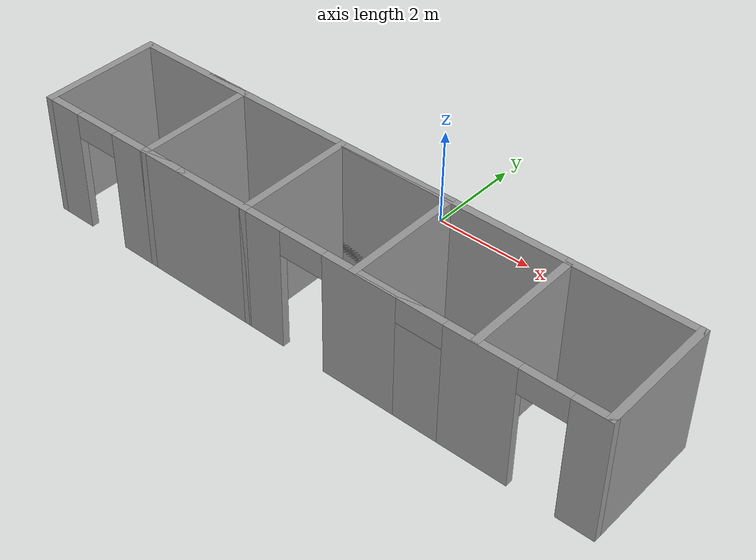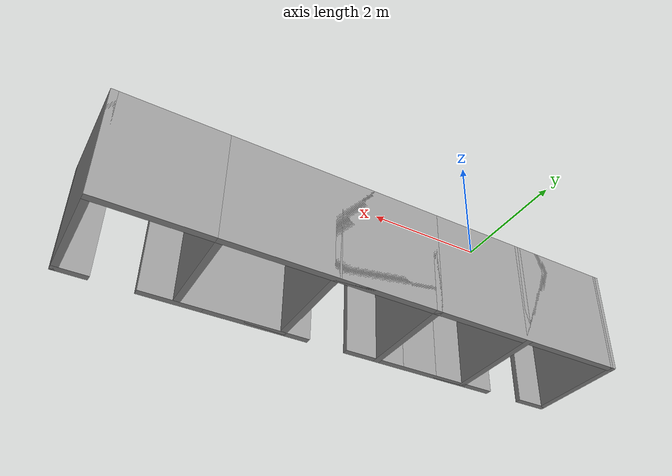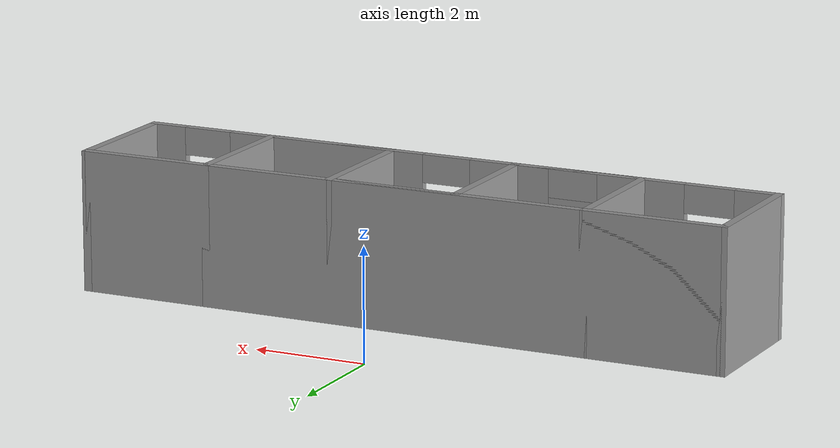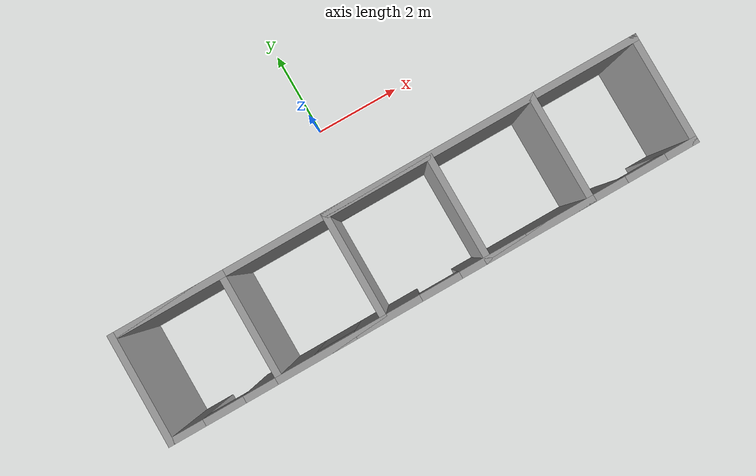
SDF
<?xml version='1.0'?>
<sdf version='1.6'>
  <model name='Office3'>
    <pose>0.435 -2.2075 0 0 -0 0</pose>
    <link name='Wall_0'>
      <collision name='Wall_0_Collision'>
        <geometry>
          <box>
            <size>2.5 0.15 2.5</size>
          </box>
        </geometry>
        <pose>0 0 1.25 0 -0 0</pose>
      </collision>
      <visual name='Wall_0_Visual'>
        <pose>0 0 1.25 0 -0 0</pose>
        <geometry>
          <box>
            <size>2.5 0.15 2.5</size>
          </box>
        </geometry>
        <material>
          <script>
            <uri>file://media/materials/scripts/gazebo.material</uri>
            <name>Gazebo/Grey</name>
          </script>
          <ambient>1 1 1 1</ambient>
        </material>
        <meta>
          <layer>0</layer>
        </meta>
      </visual>
      <pose>-4.65 0.2175 0 0 -0 0</pose>
    </link>
    <link name='Wall_1'>
      <collision name='Wall_1_Collision'>
        <geometry>
          <box>
            <size>2.5 0.15 2.5</size>
          </box>
        </geometry>
        <pose>0 0 1.25 0 -0 0</pose>
      </collision>
      <visual name='Wall_1_Visual'>
        <pose>0 0 1.25 0 -0 0</pose>
        <geometry>
          <box>
            <size>2.5 0.15 2.5</size>
          </box>
        </geometry>
        <material>
          <script>
            <uri>file://media/materials/scripts/gazebo.material</uri>
            <name>Gazebo/Grey</name>
          </script>
          <ambient>1 1 1 1</ambient>
        </material>
        <meta>
          <layer>0</layer>
        </meta>
      </visual>
      <pose>-3.475 -0.9575 0 0 -0 -1.5708</pose>
    </link>
    <link name='Wall_10'>
      <pose>-0 -2.1325 0 0 -0 3.14159</pose>
      <visual name='Wall_10_Visual_0'>
        <pose>-5.6375 0 1.25 0 -0 0</pose>
        <geometry>
          <box>
            <size>0.725 0.15 2.5</size>
          </box>
        </geometry>
        <material>
          <script>
            <uri>file://media/materials/scripts/gazebo.material</uri>
            <name>Gazebo/Grey</name>
          </script>
          <ambient>1 1 1 1</ambient>
        </material>
        <meta>
          <layer>0</layer>
        </meta>
      </visual>
      <collision name='Wall_10_Collision_0'>
        <geometry>
          <box>
            <size>0.725 0.15 2.5</size>
          </box>
        </geometry>
        <pose>-5.6375 0 1.25 0 -0 0</pose>
      </collision>
      <visual name='Wall_10_Visual_1'>
        <pose>-3.69 0 1.25 0 -0 0</pose>
        <geometry>
          <box>
            <size>1.37 0.15 2.5</size>
          </box>
        </geometry>
        <material>
          <script>
            <uri>file://media/materials/scripts/gazebo.material</uri>
            <name>Gazebo/Grey</name>
          </script>
          <ambient>1 1 1 1</ambient>
        </material>
        <meta>
          <layer>0</layer>
        </meta>
      </visual>
      <collision name='Wall_10_Collision_1'>
        <geometry>
          <box>
            <size>1.37 0.15 2.5</size>
          </box>
        </geometry>
        <pose>-3.69 0 1.25 0 -0 0</pose>
      </collision>
      <visual name='Wall_10_Visual_2'>
        <pose>-1.355 0 1.25 0 -0 0</pose>
        <geometry>
          <box>
            <size>1.5 0.15 2.5</size>
          </box>
        </geometry>
        <material>
          <script>
            <uri>file://media/materials/scripts/gazebo.material</uri>
            <name>Gazebo/Grey</name>
          </script>
          <ambient>1 1 1 1</ambient>
        </material>
        <meta>
          <layer>0</layer>
        </meta>
      </visual>
      <collision name='Wall_10_Collision_2'>
        <geometry>
          <box>
            <size>1.5 0.15 2.5</size>
          </box>
        </geometry>
        <pose>-1.355 0 1.25 0 -0 0</pose>
      </collision>
      <visual name='Wall_10_Visual_3'>
        <pose>1.035 0 1.25 0 -0 0</pose>
        <geometry>
          <box>
            <size>1.48 0.15 2.5</size>
          </box>
        </geometry>
        <material>
          <script>
            <uri>file://media/materials/scripts/gazebo.material</uri>
            <name>Gazebo/Grey</name>
          </script>
          <ambient>1 1 1 1</ambient>
        </material>
        <meta>
          <layer>0</layer>
        </meta>
      </visual>
      <collision name='Wall_10_Collision_3'>
        <geometry>
          <box>
            <size>1.48 0.15 2.5</size>
          </box>
        </geometry>
        <pose>1.035 0 1.25 0 -0 0</pose>
      </collision>
      <visual name='Wall_10_Visual_4'>
        <pose>3.47 0 1.25 0 -0 0</pose>
        <geometry>
          <box>
            <size>1.59 0.15 2.5</size>
          </box>
        </geometry>
        <material>
          <script>
            <uri>file://media/materials/scripts/gazebo.material</uri>
            <name>Gazebo/Grey</name>
          </script>
          <ambient>1 1 1 1</ambient>
        </material>
        <meta>
          <layer>0</layer>
        </meta>
      </visual>
      <collision name='Wall_10_Collision_4'>
        <geometry>
          <box>
            <size>1.59 0.15 2.5</size>
          </box>
        </geometry>
        <pose>3.47 0 1.25 0 -0 0</pose>
      </collision>
      <visual name='Wall_10_Visual_5'>
        <pose>5.5825 0 1.25 0 -0 0</pose>
        <geometry>
          <box>
            <size>0.835 0.15 2.5</size>
          </box>
        </geometry>
        <material>
          <script>
            <uri>file://media/materials/scripts/gazebo.material</uri>
            <name>Gazebo/Grey</name>
          </script>
          <ambient>1 1 1 1</ambient>
        </material>
        <meta>
          <layer>0</layer>
        </meta>
      </visual>
      <collision name='Wall_10_Collision_5'>
        <geometry>
          <box>
            <size>0.835 0.15 2.5</size>
          </box>
        </geometry>
        <pose>5.5825 0 1.25 0 -0 0</pose>
      </collision>
      <visual name='Wall_10_Visual_6'>
        <pose>-4.825 0 2.25 0 -0 0</pose>
        <geometry>
          <box>
            <size>0.9 0.15 0.5</size>
          </box>
        </geometry>
        <material>
          <script>
            <uri>file://media/materials/scripts/gazebo.material</uri>
            <name>Gazebo/Grey</name>
          </script>
          <ambient>1 1 1 1</ambient>
        </material>
        <meta>
          <layer>0</layer>
        </meta>
      </visual>
      <collision name='Wall_10_Collision_6'>
        <geometry>
          <box>
            <size>0.9 0.15 0.5</size>
          </box>
        </geometry>
        <pose>-4.825 0 2.25 0 -0 0</pose>
      </collision>
      <visual name='Wall_10_Visual_7'>
        <pose>-2.555 0 2.25 0 -0 0</pose>
        <geometry>
          <box>
            <size>0.9 0.15 0.5</size>
          </box>
        </geometry>
        <material>
          <script>
            <uri>file://media/materials/scripts/gazebo.material</uri>
            <name>Gazebo/Grey</name>
          </script>
          <ambient>1 1 1 1</ambient>
        </material>
        <meta>
          <layer>0</layer>
        </meta>
      </visual>
      <collision name='Wall_10_Collision_7'>
        <geometry>
          <box>
            <size>0.9 0.15 0.5</size>
          </box>
        </geometry>
        <pose>-2.555 0 2.25 0 -0 0</pose>
      </collision>
      <visual name='Wall_10_Visual_8'>
        <pose>-0.155 0 2.25 0 -0 0</pose>
        <geometry>
          <box>
            <size>0.9 0.15 0.5</size>
          </box>
        </geometry>
        <material>
          <script>
            <uri>file://media/materials/scripts/gazebo.material</uri>
            <name>Gazebo/Grey</name>
          </script>
          <ambient>1 1 1 1</ambient>
        </material>
        <meta>
          <layer>0</layer>
        </meta>
      </visual>
      <collision name='Wall_10_Collision_8'>
        <geometry>
          <box>
            <size>0.9 0.15 0.5</size>
          </box>
        </geometry>
        <pose>-0.155 0 2.25 0 -0 0</pose>
      </collision>
      <visual name='Wall_10_Visual_9'>
        <pose>2.225 0 2.25 0 -0 0</pose>
        <geometry>
          <box>
            <size>0.9 0.15 0.5</size>
          </box>
        </geometry>
        <material>
          <script>
            <uri>file://media/materials/scripts/gazebo.material</uri>
            <name>Gazebo/Grey</name>
          </script>
          <ambient>1 1 1 1</ambient>
        </material>
        <meta>
          <layer>0</layer>
        </meta>
      </visual>
      <collision name='Wall_10_Collision_9'>
        <geometry>
          <box>
            <size>0.9 0.15 0.5</size>
          </box>
        </geometry>
        <pose>2.225 0 2.25 0 -0 0</pose>
      </collision>
      <visual name='Wall_10_Visual_10'>
        <pose>4.715 0 2.25 0 -0 0</pose>
        <geometry>
          <box>
            <size>0.9 0.15 0.5</size>
          </box>
        </geometry>
        <material>
          <script>
            <uri>file://media/materials/scripts/gazebo.material</uri>
            <name>Gazebo/Grey</name>
          </script>
          <ambient>1 1 1 1</ambient>
        </material>
        <meta>
          <layer>0</layer>
        </meta>
      </visual>
      <collision name='Wall_10_Collision_10'>
        <geometry>
          <box>
            <size>0.9 0.15 0.5</size>
          </box>
        </geometry>
        <pose>4.715 0 2.25 0 -0 0</pose>
      </collision>
    </link>
    <link name='Wall_11'>
      <collision name='Wall_11_Collision'>
        <geometry>
          <box>
            <size>2.5 0.15 2.5</size>
          </box>
        </geometry>
        <pose>0 0 1.25 0 -0 0</pose>
      </collision>
      <visual name='Wall_11_Visual'>
        <pose>0 0 1.25 0 -0 0</pose>
        <geometry>
          <box>
            <size>2.5 0.15 2.5</size>
          </box>
        </geometry>
        <material>
          <script>
            <uri>file://media/materials/scripts/gazebo.material</uri>
            <name>Gazebo/Grey</name>
          </script>
          <ambient>1 1 1 1</ambient>
        </material>
        <meta>
          <layer>0</layer>
        </meta>
      </visual>
      <pose>-5.925 -0.9575 0 0 -0 1.5708</pose>
    </link>
    <link name='Wall_12'>
      <collision name='Wall_12_Collision'>
        <geometry>
          <box>
            <size>9.65 0.15 2.5</size>
          </box>
        </geometry>
        <pose>0 0 1.25 0 -0 0</pose>
      </collision>
      <visual name='Wall_12_Visual'>
        <pose>0 0 1.25 0 -0 0</pose>
        <geometry>
          <box>
            <size>9.65 0.15 2.5</size>
          </box>
        </geometry>
        <material>
          <script>
            <uri>file://media/materials/scripts/gazebo.material</uri>
            <name>Gazebo/Grey</name>
          </script>
          <ambient>1 1 1 1</ambient>
        </material>
        <meta>
          <layer>0</layer>
        </meta>
      </visual>
      <pose>-1.175 0.2175 0 0 -0 0</pose>
    </link>
    <link name='Wall_2'>
      <collision name='Wall_2_Collision'>
        <geometry>
          <box>
            <size>2.5 0.15 2.5</size>
          </box>
        </geometry>
        <pose>0 0 1.25 0 -0 0</pose>
      </collision>
      <visual name='Wall_2_Visual'>
        <pose>0 0 1.25 0 -0 0</pose>
        <geometry>
          <box>
            <size>2.5 0.15 2.5</size>
          </box>
        </geometry>
        <material>
          <script>
            <uri>file://media/materials/scripts/gazebo.material</uri>
            <name>Gazebo/Grey</name>
          </script>
          <ambient>1 1 1 1</ambient>
        </material>
        <meta>
          <layer>0</layer>
        </meta>
      </visual>
      <pose>-2.3 -2.1325 0 0 -0 0</pose>
    </link>
    <link name='Wall_3'>
      <collision name='Wall_3_Collision'>
        <geometry>
          <box>
            <size>2.5 0.15 2.5</size>
          </box>
        </geometry>
        <pose>0 0 1.25 0 -0 0</pose>
      </collision>
      <visual name='Wall_3_Visual'>
        <pose>0 0 1.25 0 -0 0</pose>
        <geometry>
          <box>
            <size>2.5 0.15 2.5</size>
          </box>
        </geometry>
        <material>
          <script>
            <uri>file://media/materials/scripts/gazebo.material</uri>
            <name>Gazebo/Grey</name>
          </script>
          <ambient>1 1 1 1</ambient>
        </material>
        <meta>
          <layer>0</layer>
        </meta>
      </visual>
      <pose>-1.125 -0.9575 0 0 -0 1.5708</pose>
    </link>
    <link name='Wall_4'>
      <collision name='Wall_4_Collision'>
        <geometry>
          <box>
            <size>2.5 0.15 2.5</size>
          </box>
        </geometry>
        <pose>0 0 1.25 0 -0 0</pose>
      </collision>
      <visual name='Wall_4_Visual'>
        <pose>0 0 1.25 0 -0 0</pose>
        <geometry>
          <box>
            <size>2.5 0.15 2.5</size>
          </box>
        </geometry>
        <material>
          <script>
            <uri>file://media/materials/scripts/gazebo.material</uri>
            <name>Gazebo/Grey</name>
          </script>
          <ambient>1 1 1 1</ambient>
        </material>
        <meta>
          <layer>0</layer>
        </meta>
      </visual>
      <pose>0.05 0.2175 0 0 -0 0</pose>
    </link>
    <link name='Wall_5'>
      <collision name='Wall_5_Collision'>
        <geometry>
          <box>
            <size>2.5 0.15 2.5</size>
          </box>
        </geometry>
        <pose>0 0 1.25 0 -0 0</pose>
      </collision>
      <visual name='Wall_5_Visual'>
        <pose>0 0 1.25 0 -0 0</pose>
        <geometry>
          <box>
            <size>2.5 0.15 2.5</size>
          </box>
        </geometry>
        <material>
          <script>
            <uri>file://media/materials/scripts/gazebo.material</uri>
            <name>Gazebo/Grey</name>
          </script>
          <ambient>1 1 1 1</ambient>
        </material>
        <meta>
          <layer>0</layer>
        </meta>
      </visual>
      <pose>1.225 -0.9575 0 0 -0 -1.5708</pose>
    </link>
    <link name='Wall_6'>
      <collision name='Wall_6_Collision'>
        <geometry>
          <box>
            <size>2.5 0.15 2.5</size>
          </box>
        </geometry>
        <pose>0 0 1.25 0 -0 0</pose>
      </collision>
      <visual name='Wall_6_Visual'>
        <pose>0 0 1.25 0 -0 0</pose>
        <geometry>
          <box>
            <size>2.5 0.15 2.5</size>
          </box>
        </geometry>
        <material>
          <script>
            <uri>file://media/materials/scripts/gazebo.material</uri>
            <name>Gazebo/Grey</name>
          </script>
          <ambient>1 1 1 1</ambient>
        </material>
        <meta>
          <layer>0</layer>
        </meta>
      </visual>
      <pose>2.4 -2.1325 0 0 -0 0</pose>
    </link>
    <link name='Wall_7'>
      <collision name='Wall_7_Collision'>
        <geometry>
          <box>
            <size>2.5 0.15 2.5</size>
          </box>
        </geometry>
        <pose>0 0 1.25 0 -0 0</pose>
      </collision>
      <visual name='Wall_7_Visual'>
        <pose>0 0 1.25 0 -0 0</pose>
        <geometry>
          <box>
            <size>2.5 0.15 2.5</size>
          </box>
        </geometry>
        <material>
          <script>
            <uri>file://media/materials/scripts/gazebo.material</uri>
            <name>Gazebo/Grey</name>
          </script>
          <ambient>1 1 1 1</ambient>
        </material>
        <meta>
          <layer>0</layer>
        </meta>
      </visual>
      <pose>3.575 -0.9575 0 0 -0 1.5708</pose>
    </link>
    <link name='Wall_8'>
      <collision name='Wall_8_Collision'>
        <geometry>
          <box>
            <size>2.5 0.15 2.5</size>
          </box>
        </geometry>
        <pose>0 0 1.25 0 -0 0</pose>
      </collision>
      <visual name='Wall_8_Visual'>
        <pose>0 0 1.25 0 -0 0</pose>
        <geometry>
          <box>
            <size>2.5 0.15 2.5</size>
          </box>
        </geometry>
        <material>
          <script>
            <uri>file://media/materials/scripts/gazebo.material</uri>
            <name>Gazebo/Grey</name>
          </script>
          <ambient>1 1 1 1</ambient>
        </material>
        <meta>
          <layer>0</layer>
        </meta>
      </visual>
      <pose>4.75 0.2175 0 0 -0 0</pose>
    </link>
    <link name='Wall_9'>
      <collision name='Wall_9_Collision'>
        <geometry>
          <box>
            <size>2.5 0.15 2.5</size>
          </box>
        </geometry>
        <pose>0 0 1.25 0 -0 0</pose>
      </collision>
      <visual name='Wall_9_Visual'>
        <pose>0 0 1.25 0 -0 0</pose>
        <geometry>
          <box>
            <size>2.5 0.15 2.5</size>
          </box>
        </geometry>
        <material>
          <script>
            <uri>file://media/materials/scripts/gazebo.material</uri>
            <name>Gazebo/Grey</name>
          </script>
          <ambient>1 1 1 1</ambient>
        </material>
        <meta>
          <layer>0</layer>
        </meta>
      </visual>
      <pose>5.925 -0.9575 0 0 -0 -1.5708</pose>
    </link>
    <static>1</static>
  </model>
</sdf>
